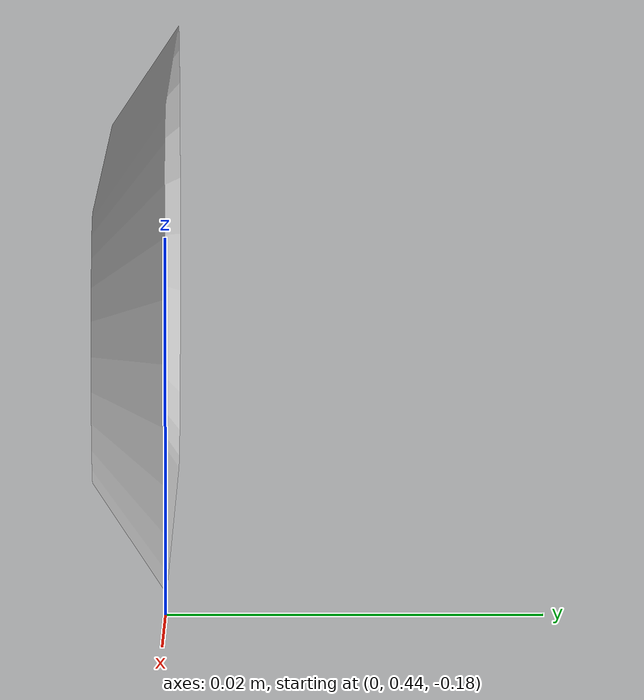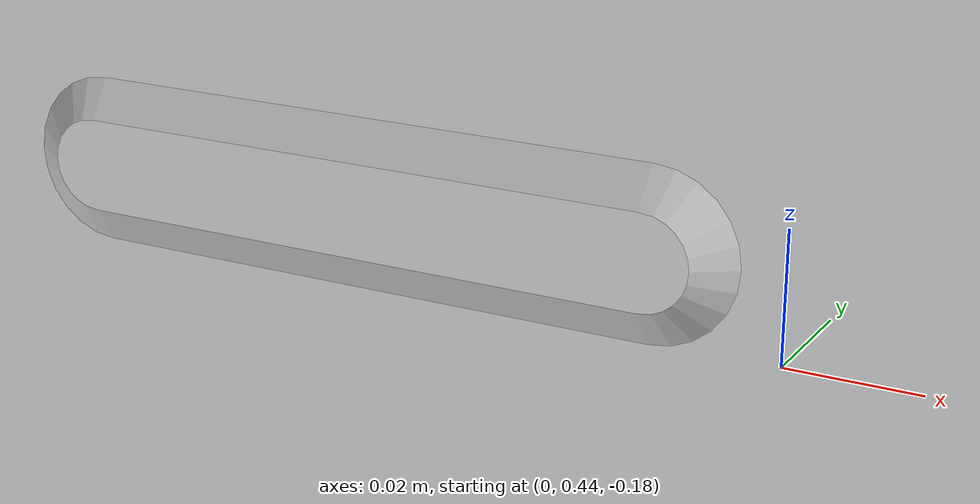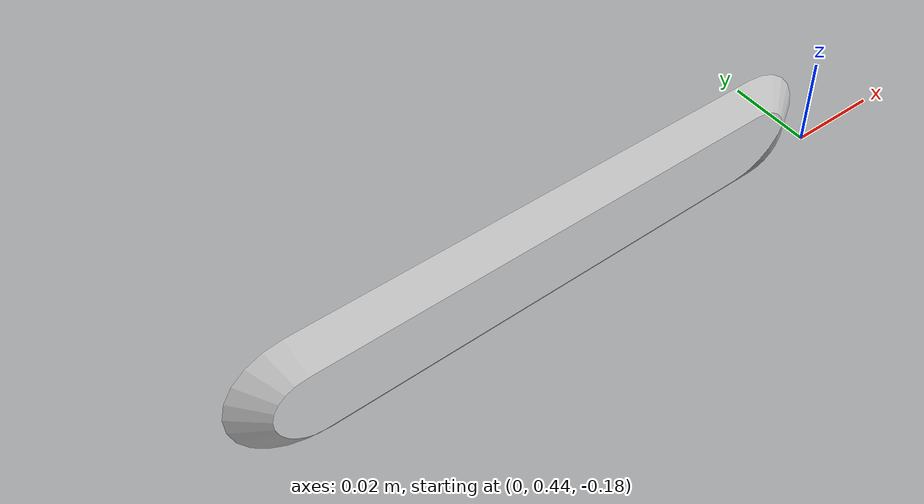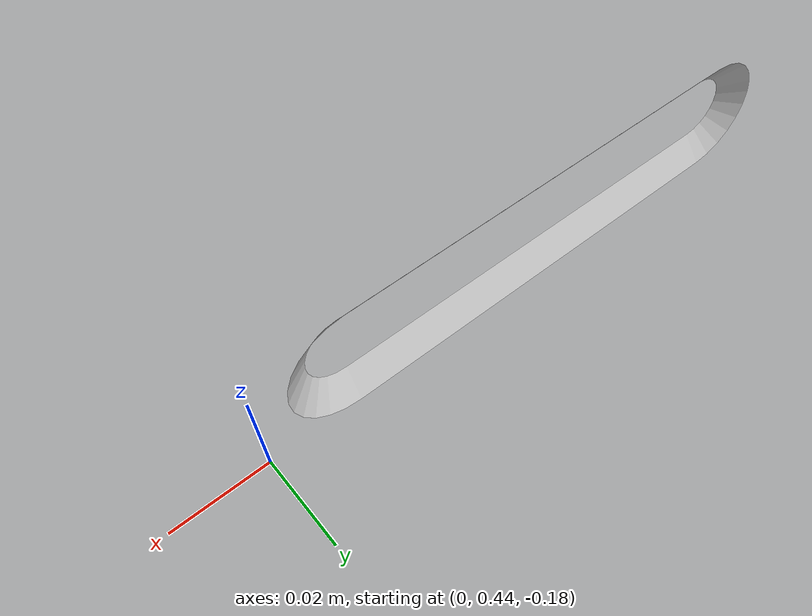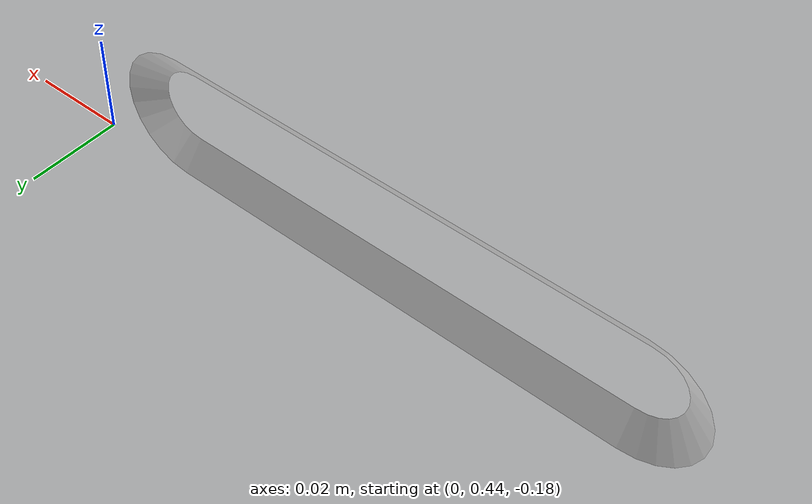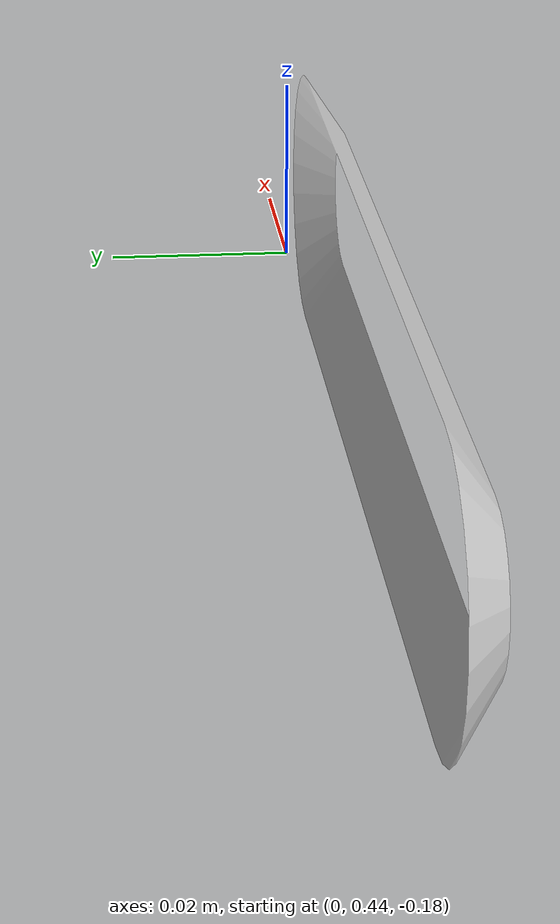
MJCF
<mujoco model="original-64">
  <default>
    <default class="visual">
      <geom group="2" type="mesh" contype="0" conaffinity="0"/>
    </default>
    <default class="collision">
      <geom group="3" type="mesh"/>
    </default>
  </default>
  <asset>
    <material name="material_0_0" specular="0.06666666666666667" shininess="0.03" rgba="0.8 0.8 0.8 1"/>
    <mesh file="original-64.obj"/>
  </asset>
  <worldbody>
    <body name="original-64">
      <geom material="material_0_0" mesh="original-64" class="visual"/>
      <geom mesh="original-64" class="collision"/>
    </body>
  </worldbody>
</mujoco>
